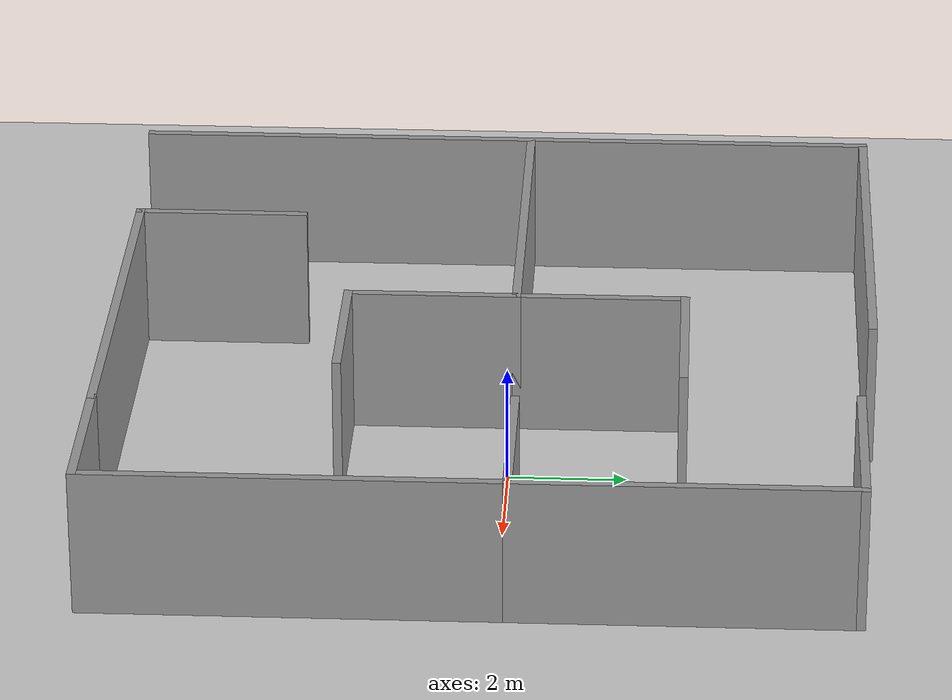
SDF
<sdf version="1.7">
 <world name="maze_t8">
  <light name="sun" type="directional">
   <pose>0 0 10 0 -0 0</pose>
   <diffuse>0.8 0.8 0.8 1</diffuse>
   <specular>0.2 0.2 0.2 1</specular>
   <attenuation>
    <range>1000</range>
    <constant>0.9</constant>
    <linear>0.01</linear>
    <quadratic>0.001</quadratic>
   </attenuation>
   <direction>-0.5 0.1 -0.9</direction>
   <spot><inner_angle>0</inner_angle><outer_angle>0</outer_angle><falloff>0</falloff></spot>
  </light>
  <model name="ground_plane">
   <static>1</static>
   <link name="link">
    <collision name="collision">
     <geometry><plane><normal>0 0 1</normal><size>100 100</size></plane></geometry>
     <surface>
      <contact><collide_bitmask>65535</collide_bitmask></contact>
      <friction><ode><mu>100</mu><mu2>50</mu2></ode></friction>
     </surface>
    </collision>
    <visual name="visual">
     <cast_shadows>0</cast_shadows>
     <geometry><plane><normal>0 0 1</normal><size>100 100</size></plane></geometry>
     <material>
      <script><uri>file://media/materials/scripts/gazebo.material</uri><name>Gazebo/Grey</name></script>
      <ambient>0.9 0.9 0.9 1</ambient>
      <diffuse>0.9 0.9 0.9 1</diffuse>
      <specular>0.9 0.9 0.9 1</specular>
      <emissive>0.4 0.4 0.4 1</emissive>
     </material>
    </visual>
   </link>
  </model>
  <gravity>0 0 -9.8</gravity>
  <magnetic_field>6e-06 2.3e-05 -4.2e-05</magnetic_field>
  <atmosphere type="adiabatic"/>
  <physics type="ode">
   <max_step_size>0.001</max_step_size>
   <real_time_factor>1</real_time_factor>
   <real_time_update_rate>1000</real_time_update_rate>
  </physics>
  <scene><ambient>0.4 0.4 0.4 1</ambient><background>0.7 0.7 0.7 1</background><shadows>1</shadows></scene>
  <audio><device>default</device></audio>
  <spherical_coordinates>
   <surface_model>EARTH_WGS84</surface_model>
   <latitude_deg>0</latitude_deg>
   <longitude_deg>0</longitude_deg>
   <elevation>0</elevation>
   <heading_deg>0</heading_deg>
  </spherical_coordinates>
  <model name="Untitled">
   <pose>-1.73857 -0.374158 0 0 -0 0</pose>
   <link name="Wall_26">
    <collision name="Wall_26_Collision">
     <geometry><box><size>7.25 0.15 2.5</size></box></geometry>
     <pose>0 0 1.25 0 -0 0</pose>
    </collision>
    <visual name="Wall_26_Visual">
     <pose>0 0 1.25 0 -0 0</pose>
     <geometry><box><size>7.25 0.15 2.5</size></box></geometry>
     <material>
      <script><uri>file://media/materials/scripts/gazebo.material</uri><name>Gazebo/Grey</name></script>
      <ambient>0.9 0.9 0.9 1</ambient>
      <diffuse>0.9 0.9 0.9 1</diffuse>
      <specular>0.9 0.9 0.9 1</specular>
      <emissive>0.4 0.4 0.4 1</emissive>
     </material>
     <meta><layer>0</layer></meta>
    </visual>
    <pose>0.370991 -6.27453 0 0 -0 0</pose>
   </link>
   <link name="Wall_29">
    <collision name="Wall_29_Collision">
     <geometry><box><size>3 0.15 2.5</size></box></geometry>
     <pose>0 0 1.25 0 -0 0</pose>
    </collision>
    <visual name="Wall_29_Visual">
     <pose>0 0 1.25 0 -0 0</pose>
     <geometry><box><size>3 0.15 2.5</size></box></geometry>
     <material>
      <script><uri>file://media/materials/scripts/gazebo.material</uri><name>Gazebo/Grey</name></script>
      <ambient>0.9 0.9 0.9 1</ambient>
      <diffuse>0.9 0.9 0.9 1</diffuse>
      <specular>0.9 0.9 0.9 1</specular>
      <emissive>0.4 0.4 0.4 1</emissive>
     </material>
     <meta><layer>0</layer></meta>
    </visual>
    <pose>-3.17901 -4.84953 0 0 -0 1.5708</pose>
   </link>
   <link name="Wall_31">
    <collision name="Wall_31_Collision">
     <geometry><box><size>6.5 0.15 2.5</size></box></geometry>
     <pose>0 0 1.25 0 -0 0</pose>
    </collision>
    <visual name="Wall_31_Visual">
     <pose>0 0 1.25 0 -0 0</pose>
     <geometry><box><size>6.5 0.15 2.5</size></box></geometry>
     <material>
      <script><uri>file://media/materials/scripts/gazebo.material</uri><name>Gazebo/Grey</name></script>
      <ambient>0.9 0.9 0.9 1</ambient>
      <diffuse>0.9 0.9 0.9 1</diffuse>
      <specular>0.9 0.9 0.9 1</specular>
      <emissive>0.4 0.4 0.4 1</emissive>
     </material>
     <meta><layer>0</layer></meta>
    </visual>
    <pose>-3.27563 0.44461 0 0 -0 0</pose>
   </link>
   <link name="Wall_32">
    <collision name="Wall_32_Collision">
     <geometry><box><size>3 0.15 2.5</size></box></geometry>
     <pose>0 0 1.25 0 -0 0</pose>
    </collision>
    <visual name="Wall_32_Visual">
     <pose>0 0 1.25 0 -0 0</pose>
     <geometry><box><size>3 0.15 2.5</size></box></geometry>
     <material>
      <script><uri>file://media/materials/scripts/gazebo.material</uri><name>Gazebo/Grey</name></script>
      <ambient>0.9 0.9 0.9 1</ambient>
      <diffuse>0.9 0.9 0.9 1</diffuse>
      <specular>0.9 0.9 0.9 1</specular>
      <emissive>0.4 0.4 0.4 1</emissive>
     </material>
     <meta><layer>0</layer></meta>
    </visual>
    <pose>-0.100633 -0.98039 0 0 -0 -1.5708</pose>
   </link>
   <link name="Wall_33">
    <collision name="Wall_33_Collision">
     <geometry><box><size>2.75 0.15 2.5</size></box></geometry>
     <pose>0 0 1.25 0 -0 0</pose>
    </collision>
    <visual name="Wall_33_Visual">
     <pose>0 0 1.25 0 -0 0</pose>
     <geometry><box><size>2.75 0.15 2.5</size></box></geometry>
     <material>
      <script><uri>file://media/materials/scripts/gazebo.material</uri><name>Gazebo/Grey</name></script>
      <ambient>0.9 0.9 0.9 1</ambient>
      <diffuse>0.9 0.9 0.9 1</diffuse>
      <specular>0.9 0.9 0.9 1</specular>
      <emissive>0.4 0.4 0.4 1</emissive>
     </material>
     <meta><layer>0</layer></meta>
    </visual>
    <pose>1.19937 -2.40539 0 0 -0 0</pose>
   </link>
   <link name="Wall_35">
    <collision name="Wall_35_Collision">
     <geometry><box><size>3 0.15 2.5</size></box></geometry>
     <pose>0 0 1.25 0 -0 0</pose>
    </collision>
    <visual name="Wall_35_Visual">
     <pose>0 0 1.25 0 -0 0</pose>
     <geometry><box><size>3 0.15 2.5</size></box></geometry>
     <material>
      <script><uri>file://media/materials/scripts/gazebo.material</uri><name>Gazebo/Grey</name></script>
      <ambient>0.9 0.9 0.9 1</ambient>
      <diffuse>0.9 0.9 0.9 1</diffuse>
      <specular>0.9 0.9 0.9 1</specular>
      <emissive>0.4 0.4 0.4 1</emissive>
     </material>
     <meta><layer>0</layer></meta>
    </visual>
    <pose>-0.100633 1.86961 0 0 -0 1.5708</pose>
   </link>
   <link name="Wall_36">
    <collision name="Wall_36_Collision">
     <geometry><box><size>3 0.15 2.5</size></box></geometry>
     <pose>0 0 1.25 0 -0 0</pose>
    </collision>
    <visual name="Wall_36_Visual">
     <pose>0 0 1.25 0 -0 0</pose>
     <geometry><box><size>3 0.15 2.5</size></box></geometry>
     <material>
      <script><uri>file://media/materials/scripts/gazebo.material</uri><name>Gazebo/Grey</name></script>
      <ambient>0.9 0.9 0.9 1</ambient>
      <diffuse>0.9 0.9 0.9 1</diffuse>
      <specular>0.9 0.9 0.9 1</specular>
      <emissive>0.4 0.4 0.4 1</emissive>
     </material>
     <meta><layer>0</layer></meta>
    </visual>
    <pose>1.32437 3.29461 0 0 -0 0</pose>
   </link>
   <link name="Wall_38">
    <collision name="Wall_38_Collision">
     <geometry><box><size>2.75 0.15 2.5</size></box></geometry>
     <pose>0 0 1.25 0 -0 0</pose>
    </collision>
    <visual name="Wall_38_Visual">
     <pose>0 0 1.25 0 -0 0</pose>
     <geometry><box><size>2.75 0.15 2.5</size></box></geometry>
     <material>
      <script><uri>file://media/materials/scripts/gazebo.material</uri><name>Gazebo/Grey</name></script>
      <ambient>0.9 0.9 0.9 1</ambient>
      <diffuse>0.9 0.9 0.9 1</diffuse>
      <specular>0.9 0.9 0.9 1</specular>
      <emissive>0.4 0.4 0.4 1</emissive>
     </material>
     <meta><layer>0</layer></meta>
    </visual>
    <pose>5.22099 -6.27453 0 0 -0 0</pose>
   </link>
   <link name="Wall_39">
    <collision name="Wall_39_Collision">
     <geometry><box><size>7 0.15 2.5</size></box></geometry>
     <pose>0 0 1.25 0 -0 0</pose>
    </collision>
    <visual name="Wall_39_Visual">
     <pose>0 0 1.25 0 -0 0</pose>
     <geometry><box><size>7 0.15 2.5</size></box></geometry>
     <material>
      <script><uri>file://media/materials/scripts/gazebo.material</uri><name>Gazebo/Grey</name></script>
      <ambient>0.9 0.9 0.9 1</ambient>
      <diffuse>0.9 0.9 0.9 1</diffuse>
      <specular>0.9 0.9 0.9 1</specular>
      <emissive>0.4 0.4 0.4 1</emissive>
     </material>
     <meta><layer>0</layer></meta>
    </visual>
    <pose>6.52099 -2.84953 0 0 -0 1.5708</pose>
   </link>
   <link name="Wall_40">
    <collision name="Wall_40_Collision">
     <geometry><box><size>3 0.15 2.5</size></box></geometry>
     <pose>0 0 1.25 0 -0 0</pose>
    </collision>
    <visual name="Wall_40_Visual">
     <pose>0 0 1.25 0 -0 0</pose>
     <geometry><box><size>3 0.15 2.5</size></box></geometry>
     <material>
      <script><uri>file://media/materials/scripts/gazebo.material</uri><name>Gazebo/Grey</name></script>
      <ambient>0.9 0.9 0.9 1</ambient>
      <diffuse>0.9 0.9 0.9 1</diffuse>
      <specular>0.9 0.9 0.9 1</specular>
      <emissive>0.4 0.4 0.4 1</emissive>
     </material>
     <meta><layer>0</layer></meta>
    </visual>
    <pose>5.09599 0.575467 0 0 -0 3.14159</pose>
   </link>
   <link name="Wall_42">
    <collision name="Wall_42_Collision">
     <geometry><box><size>5.75 0.15 2.5</size></box></geometry>
     <pose>0 0 1.25 0 -0 0</pose>
    </collision>
    <visual name="Wall_42_Visual">
     <pose>0 0 1.25 0 -0 0</pose>
     <geometry><box><size>5.75 0.15 2.5</size></box></geometry>
     <material>
      <script><uri>file://media/materials/scripts/gazebo.material</uri><name>Gazebo/Grey</name></script>
      <ambient>0.9 0.9 0.9 1</ambient>
      <diffuse>0.9 0.9 0.9 1</diffuse>
      <specular>0.9 0.9 0.9 1</specular>
      <emissive>0.4 0.4 0.4 1</emissive>
     </material>
     <meta><layer>0</layer></meta>
    </visual>
    <pose>6.52099 3.37547 0 0 -0 1.5708</pose>
   </link>
   <link name="Wall_43">
    <collision name="Wall_43_Collision">
     <geometry><box><size>3.25 0.15 2.5</size></box></geometry>
     <pose>0 0 1.25 0 -0 0</pose>
    </collision>
    <visual name="Wall_43_Visual">
     <pose>0 0 1.25 0 -0 0</pose>
     <geometry><box><size>3.25 0.15 2.5</size></box></geometry>
     <material>
      <script><uri>file://media/materials/scripts/gazebo.material</uri><name>Gazebo/Grey</name></script>
      <ambient>0.9 0.9 0.9 1</ambient>
      <diffuse>0.9 0.9 0.9 1</diffuse>
      <specular>0.9 0.9 0.9 1</specular>
      <emissive>0.4 0.4 0.4 1</emissive>
     </material>
     <meta><layer>0</layer></meta>
    </visual>
    <pose>4.97099 6.17547 0 0 -0 3.14159</pose>
   </link>
   <link name="Wall_45">
    <collision name="Wall_45_Collision">
     <geometry><box><size>7.5 0.15 2.5</size></box></geometry>
     <pose>0 0 1.25 0 -0 0</pose>
    </collision>
    <visual name="Wall_45_Visual">
     <pose>0 0 1.25 0 -0 0</pose>
     <geometry><box><size>7.5 0.15 2.5</size></box></geometry>
     <material>
      <script><uri>file://media/materials/scripts/gazebo.material</uri><name>Gazebo/Grey</name></script>
      <ambient>0.9 0.9 0.9 1</ambient>
      <diffuse>0.9 0.9 0.9 1</diffuse>
      <specular>0.9 0.9 0.9 1</specular>
      <emissive>0.4 0.4 0.4 1</emissive>
     </material>
     <meta><layer>0</layer></meta>
    </visual>
    <pose>-2.84599 6.425 0 0 -0 0</pose>
   </link>
   <link name="Wall_47">
    <collision name="Wall_47_Collision">
     <geometry><box><size>13 0.15 2.5</size></box></geometry>
     <pose>0 0 1.25 0 -0 0</pose>
    </collision>
    <visual name="Wall_47_Visual">
     <pose>0 0 1.25 0 -0 0</pose>
     <geometry><box><size>13 0.15 2.5</size></box></geometry>
     <material>
      <script><uri>file://media/materials/scripts/gazebo.material</uri><name>Gazebo/Grey</name></script>
      <ambient>0.9 0.9 0.9 1</ambient>
      <diffuse>0.9 0.9 0.9 1</diffuse>
      <specular>0.9 0.9 0.9 1</specular>
      <emissive>0.4 0.4 0.4 1</emissive>
     </material>
     <meta><layer>0</layer></meta>
    </visual>
    <pose>-6.52099 0 0 0 -0 -1.5708</pose>
   </link>
   <static>1</static>
  </model>
 </world>
</sdf>
